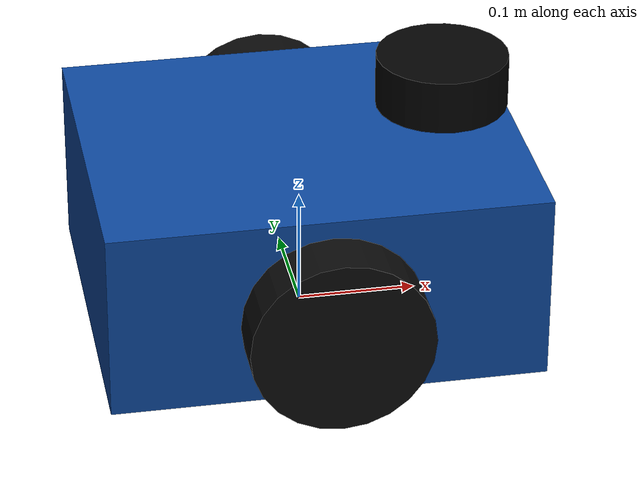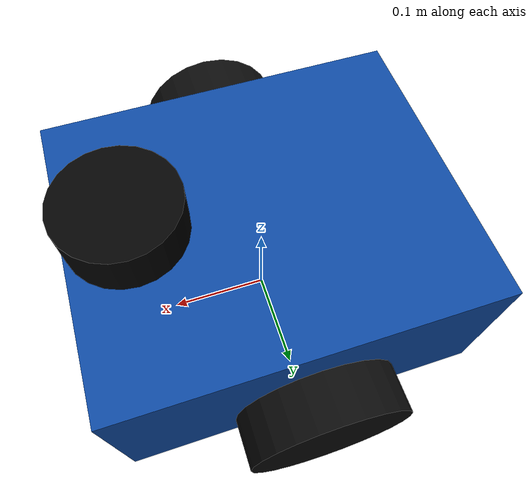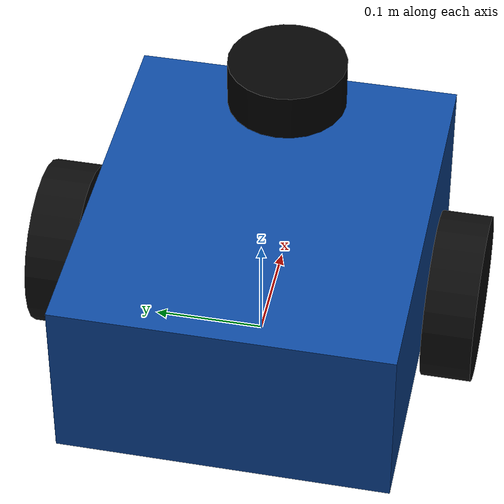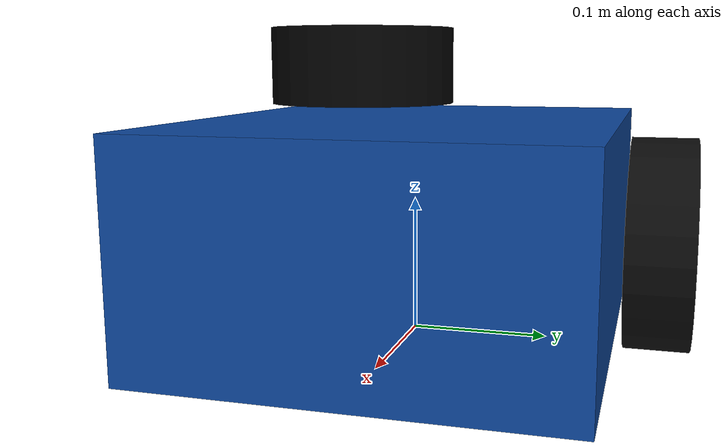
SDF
<?xml version="1.0"?>
<sdf version="1.10">
  <model name="navbot">
    <link name="base_footprint">
      <pose>0 0 0 0 0 0</pose>
      <inertial>
        <mass>0.01</mass>
        <inertia>
          <ixx>0.0001</ixx>
          <iyy>0.0001</iyy>
          <izz>0.0001</izz>
        </inertia>
      </inertial>
    </link>

    <link name="base_link">
      <pose>0 0 0.08 0 0 0</pose>
      <inertial>
        <mass>4.0</mass>
        <inertia>
          <ixx>0.04</ixx>
          <iyy>0.05</iyy>
          <izz>0.07</izz>
        </inertia>
      </inertial>
      <collision name="base_collision">
        <geometry>
          <box>
            <size>0.36 0.30 0.16</size>
          </box>
        </geometry>
      </collision>
      <visual name="base_visual">
        <geometry>
          <box>
            <size>0.36 0.30 0.16</size>
          </box>
        </geometry>
        <material>
          <ambient>0.05 0.28 0.62 1.0</ambient>
          <diffuse>0.05 0.28 0.62 1.0</diffuse>
        </material>
      </visual>
    </link>

    <joint name="base_footprint_to_base_link" type="fixed">
      <parent>base_footprint</parent>
      <child>base_link</child>
    </joint>

    <link name="left_wheel">
      <pose>0 0.18 0.075 1.5708 0 0</pose>
      <inertial>
        <mass>0.4</mass>
        <inertia>
          <ixx>0.001</ixx>
          <iyy>0.001</iyy>
          <izz>0.001</izz>
        </inertia>
      </inertial>
      <collision name="left_wheel_collision">
        <geometry>
          <cylinder>
            <radius>0.075</radius>
            <length>0.045</length>
          </cylinder>
        </geometry>
      </collision>
      <visual name="left_wheel_visual">
        <geometry>
          <cylinder>
            <radius>0.075</radius>
            <length>0.045</length>
          </cylinder>
        </geometry>
        <material>
          <ambient>0.04 0.04 0.04 1.0</ambient>
          <diffuse>0.04 0.04 0.04 1.0</diffuse>
        </material>
      </visual>
    </link>

    <joint name="left_wheel_joint" type="revolute">
      <parent>base_link</parent>
      <child>left_wheel</child>
      <axis>
        <xyz>0 1 0</xyz>
        <limit>
          <lower>-1e16</lower>
          <upper>1e16</upper>
        </limit>
      </axis>
    </joint>

    <link name="right_wheel">
      <pose>0 -0.18 0.075 1.5708 0 0</pose>
      <inertial>
        <mass>0.4</mass>
        <inertia>
          <ixx>0.001</ixx>
          <iyy>0.001</iyy>
          <izz>0.001</izz>
        </inertia>
      </inertial>
      <collision name="right_wheel_collision">
        <geometry>
          <cylinder>
            <radius>0.075</radius>
            <length>0.045</length>
          </cylinder>
        </geometry>
      </collision>
      <visual name="right_wheel_visual">
        <geometry>
          <cylinder>
            <radius>0.075</radius>
            <length>0.045</length>
          </cylinder>
        </geometry>
        <material>
          <ambient>0.04 0.04 0.04 1.0</ambient>
          <diffuse>0.04 0.04 0.04 1.0</diffuse>
        </material>
      </visual>
    </link>

    <joint name="right_wheel_joint" type="revolute">
      <parent>base_link</parent>
      <child>right_wheel</child>
      <axis>
        <xyz>0 1 0</xyz>
        <limit>
          <lower>-1e16</lower>
          <upper>1e16</upper>
        </limit>
      </axis>
    </joint>

    <link name="front_caster">
      <pose>0.15 0 0.025 0 0 0</pose>
      <collision name="front_caster_collision">
        <geometry>
          <sphere>
            <radius>0.025</radius>
          </sphere>
        </geometry>
      </collision>
      <visual name="front_caster_visual">
        <geometry>
          <sphere>
            <radius>0.025</radius>
          </sphere>
        </geometry>
        <material>
          <ambient>0.35 0.35 0.35 1.0</ambient>
          <diffuse>0.35 0.35 0.35 1.0</diffuse>
        </material>
      </visual>
    </link>

    <joint name="front_caster_joint" type="fixed">
      <parent>base_link</parent>
      <child>front_caster</child>
    </joint>

    <link name="lidar_link">
      <pose>0.12 0 0.20 0 0 0</pose>
      <visual name="lidar_visual">
        <geometry>
          <cylinder>
            <radius>0.055</radius>
            <length>0.045</length>
          </cylinder>
        </geometry>
        <material>
          <ambient>0.01 0.01 0.01 1.0</ambient>
          <diffuse>0.01 0.01 0.01 1.0</diffuse>
        </material>
      </visual>
      <sensor name="navbot_lidar" type="gpu_lidar">
        <pose>0 0 0 0 0 0</pose>
        <topic>/gz_scan</topic>
        <update_rate>10</update_rate>
        <always_on>false</always_on>
        <visualize>true</visualize>
        <lidar>
          <scan>
            <horizontal>
              <samples>720</samples>
              <resolution>1</resolution>
              <min_angle>-3.14159</min_angle>
              <max_angle>3.14159</max_angle>
            </horizontal>
          </scan>
          <range>
            <min>0.12</min>
            <max>8.0</max>
            <resolution>0.01</resolution>
          </range>
        </lidar>
      </sensor>
    </link>

    <joint name="lidar_joint" type="fixed">
      <parent>base_link</parent>
      <child>lidar_link</child>
    </joint>

    <plugin filename="gz-sim-diff-drive-system" name="gz::sim::systems::DiffDrive">
      <left_joint>left_wheel_joint</left_joint>
      <right_joint>right_wheel_joint</right_joint>
      <wheel_separation>0.36</wheel_separation>
      <wheel_radius>0.075</wheel_radius>
      <odom_publish_frequency>50</odom_publish_frequency>
      <topic>/cmd_vel</topic>
      <odom_topic>/odom</odom_topic>
      <tf_topic>/tf</tf_topic>
      <frame_id>odom</frame_id>
      <child_frame_id>base_footprint</child_frame_id>
      <max_linear_acceleration>0.8</max_linear_acceleration>
      <min_linear_acceleration>-0.8</min_linear_acceleration>
      <max_angular_acceleration>1.5</max_angular_acceleration>
      <min_angular_acceleration>-1.5</min_angular_acceleration>
    </plugin>
  </model>
</sdf>
